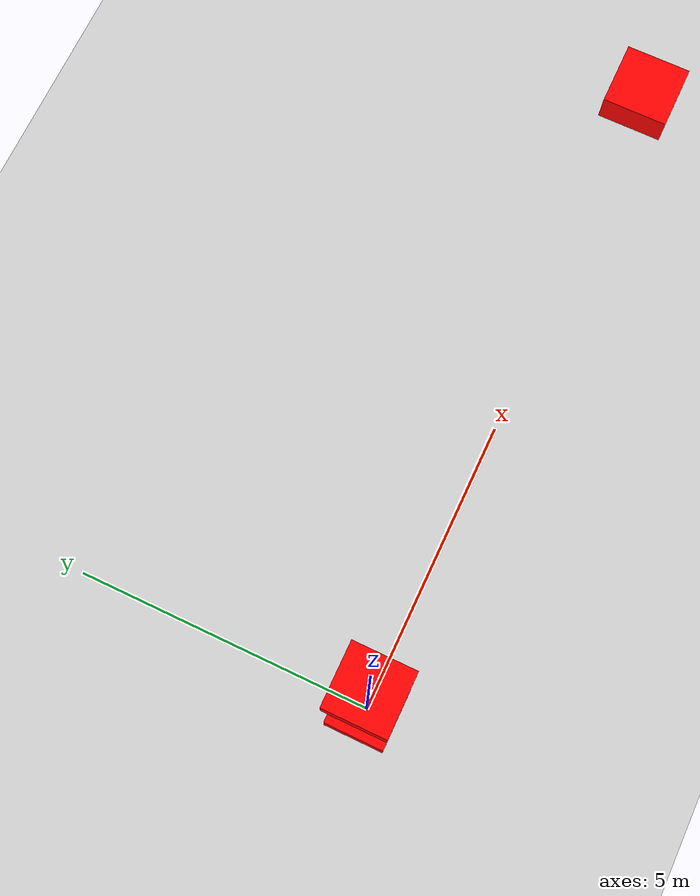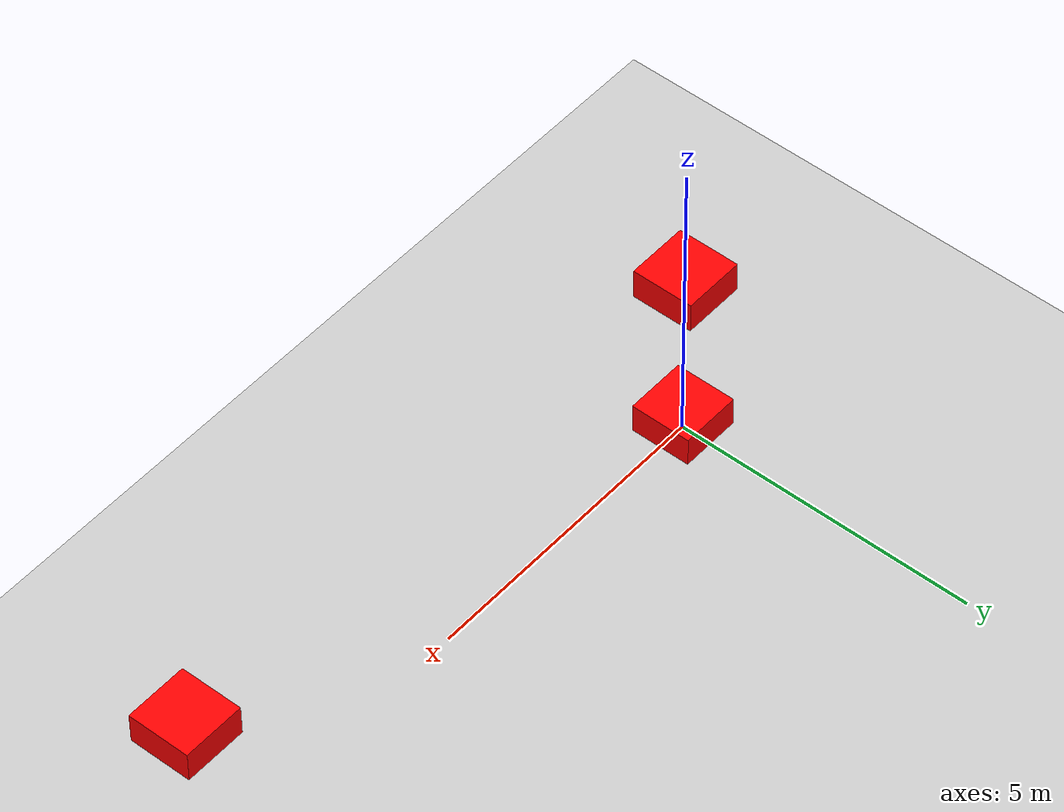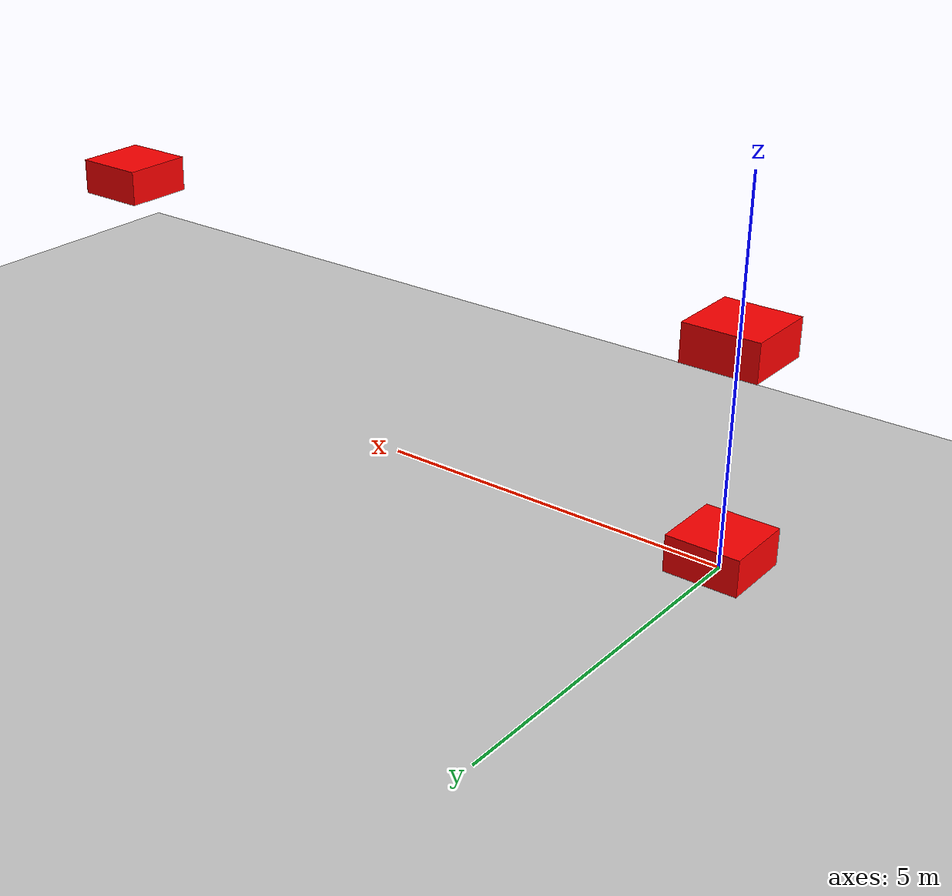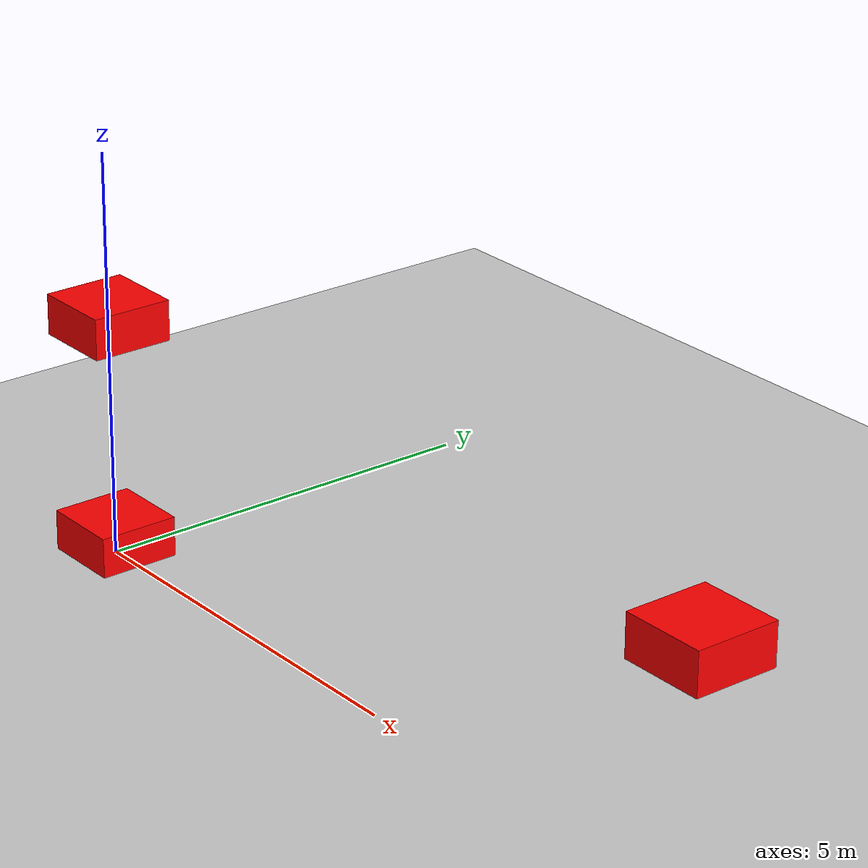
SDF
<?xml version="1.0"?>
<sdf version="1.6">
  <world name="default">

    <model name="ground_plane">
      <static>true</static>
      <link name="link">
        <collision name="collision">
          <geometry>
            <plane>
              <normal>0 0 1</normal>
            </plane>
          </geometry>
        </collision>
        <visual name="visual">
          <geometry>
            <plane>
              <normal>0 0 1</normal>
              <size>100 100</size>
            </plane>
          </geometry>
          <material>
            <ambient>0.8 0.8 0.8 1</ambient>
            <diffuse>0.8 0.8 0.8 1</diffuse>
            <specular>0.8 0.8 0.8 1</specular>
          </material>
        </visual>
      </link>
    </model>

    <model name="M1">
      <pose>0 0 0.25 0 0.0 0</pose>
      <link name="body">
        <inertial>
          <inertia>
            <ixx>1</ixx>
            <ixy>0</ixy>
            <ixz>0</ixz>
            <iyy>1</iyy>
            <iyz>0</iyz>
            <izz>1</izz>
          </inertia>
          <mass>1.0</mass>
        </inertial>
        <collision name="box_collision">
          <geometry>
            <box>
              <size>1 1 0.5</size>
            </box>
          </geometry>
        </collision>

        <visual name="box_visual">
          <geometry>
            <box>
              <size>1 1 0.5</size>
            </box>
          </geometry>
          <material>
            <ambient>1 0 0 1</ambient>
            <diffuse>1 0 0 1</diffuse>
            <specular>1 0 0 1</specular>
          </material>
        </visual>
      </link>
    </model>
    <model name="M2">
      <pose>0 0 3.0 0 0.0 0</pose>
      <link name="body">
        <inertial>
          <inertia>
            <ixx>1</ixx>
            <ixy>0</ixy>
            <ixz>0</ixz>
            <iyy>1</iyy>
            <iyz>0</iyz>
            <izz>1</izz>
          </inertia>
          <mass>1.0</mass>
        </inertial>
        <collision name="box_collision">
          <geometry>
            <box>
              <size>1 1 0.5</size>
            </box>
          </geometry>
        </collision>

        <visual name="box_visual">
          <geometry>
            <box>
              <size>1 1 0.5</size>
            </box>
          </geometry>
          <material>
            <ambient>1 0 0 1</ambient>
            <diffuse>1 0 0 1</diffuse>
            <specular>1 0 0 1</specular>
          </material>
        </visual>
      </link>
    </model>
    <model name="body">
      <pose>10 0 3.0 0 0.0 0</pose>
      <link name="body">
        <inertial>
          <inertia>
            <ixx>1</ixx>
            <ixy>0</ixy>
            <ixz>0</ixz>
            <iyy>1</iyy>
            <iyz>0</iyz>
            <izz>1</izz>
          </inertia>
          <mass>1.0</mass>
        </inertial>
        <collision name="box_collision">
          <geometry>
            <box>
              <size>1 1 0.5</size>
            </box>
          </geometry>
        </collision>

        <visual name="box_visual">
          <geometry>
            <box>
              <size>1 1 0.5</size>
            </box>
          </geometry>
          <material>
            <ambient>1 0 0 1</ambient>
            <diffuse>1 0 0 1</diffuse>
            <specular>1 0 0 1</specular>
          </material>
        </visual>
      </link>
    </model>
  </world>
</sdf>
